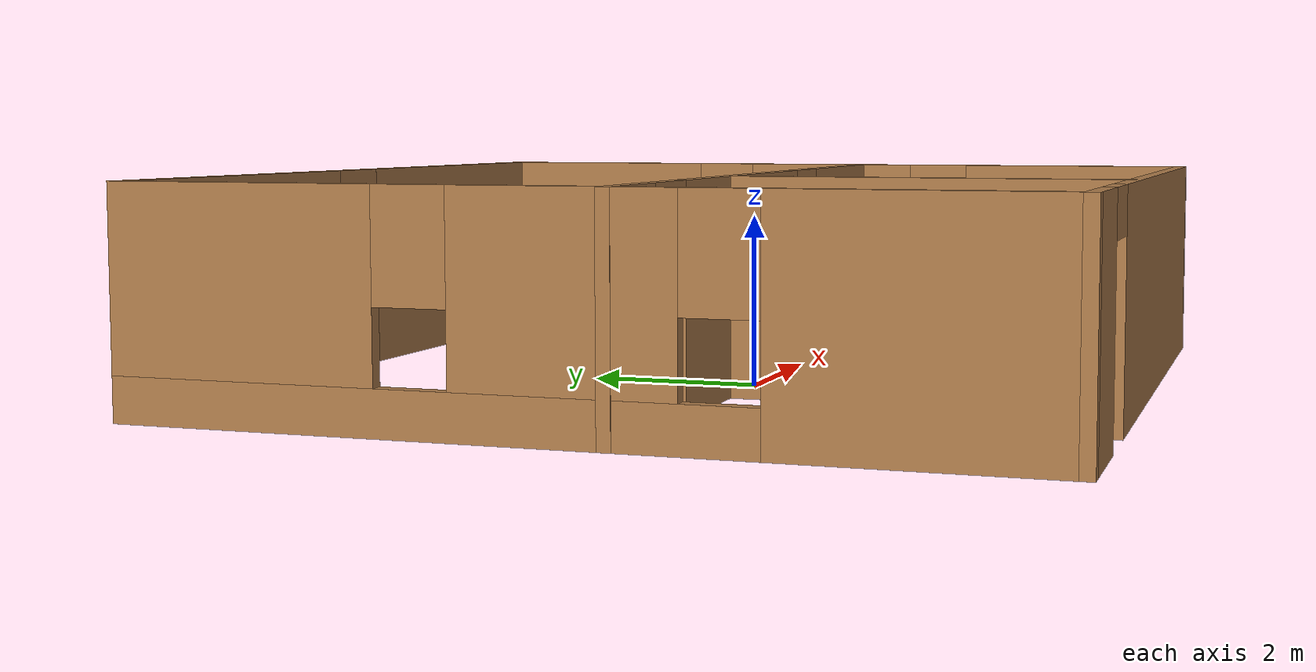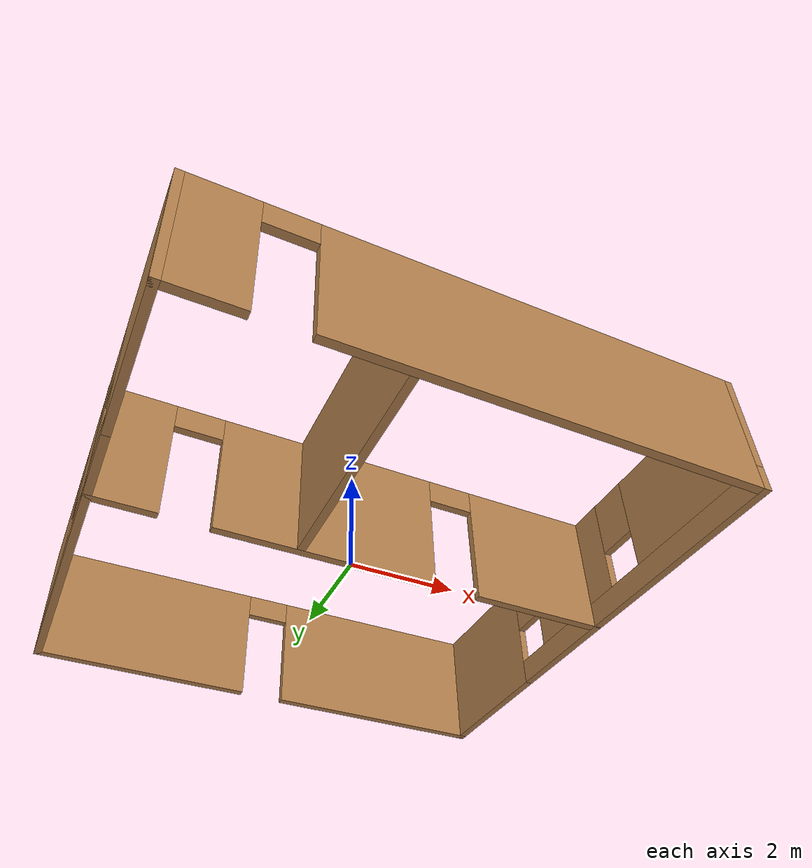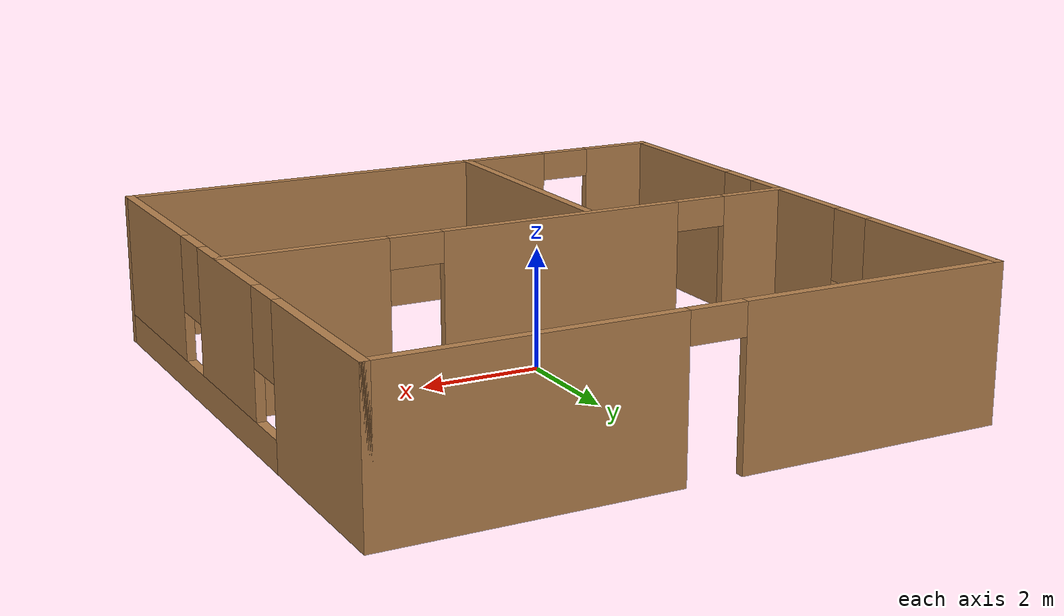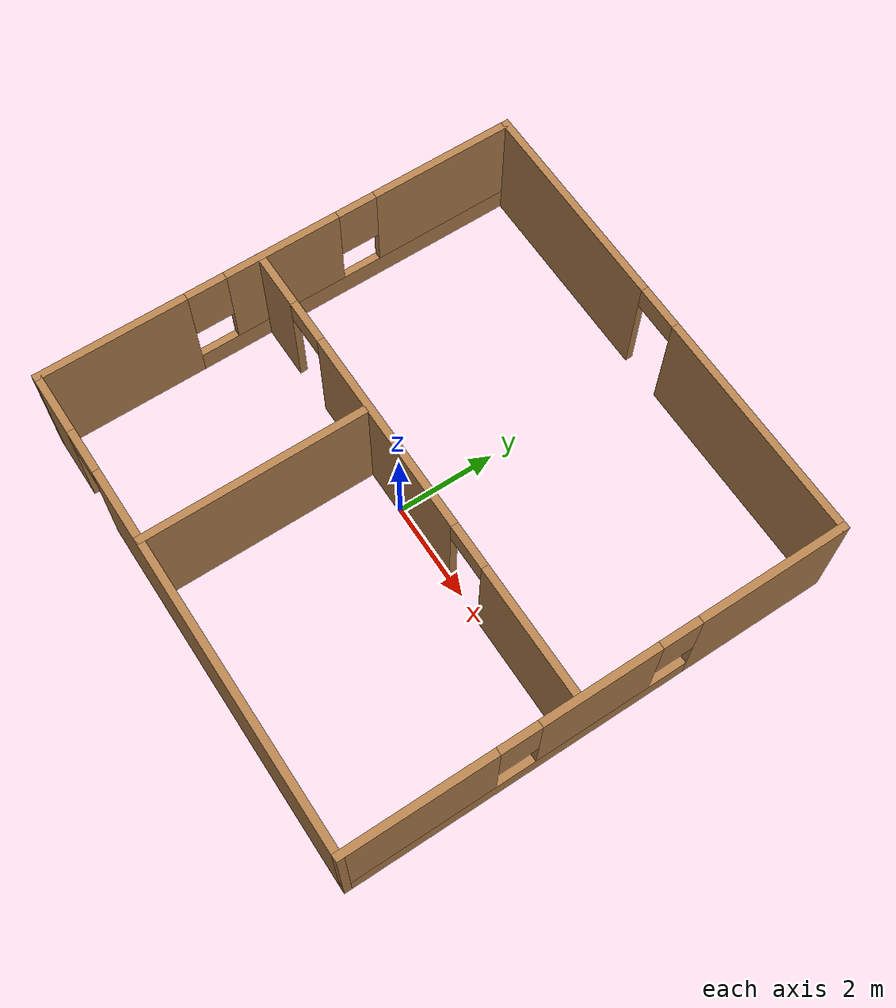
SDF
<?xml version='1.0'?>
<sdf version='1.7'>
  <model name='house_world'>
    <pose>0.302579 0.465 0 0 -0 0</pose>
    <link name='Wall_0'>
      <pose>0.002421 -4.925 0 0 -0 0</pose>
      <visual name='Wall_0_Visual_0'>
        <pose>-4.34111 0 1.25 0 -0 0</pose>
        <geometry>
          <box>
            <size>1.31779 0.15 2.5</size>
          </box>
        </geometry>
        <material>
          <script>
            <uri>file://media/materials/scripts/gazebo.material</uri>
            <name>Gazebo/Wood</name>
          </script>
          <ambient>1 1 1 1</ambient>
        </material>
        <meta>
          <layer>0</layer>
        </meta>
      </visual>
      <collision name='Wall_0_Collision_0'>
        <geometry>
          <box>
            <size>1.31779 0.15 2.5</size>
          </box>
        </geometry>
        <pose>-4.34111 0 1.25 0 -0 0</pose>
      </collision>
      <visual name='Wall_0_Visual_1'>
        <pose>1.10889 0 1.25 0 -0 0</pose>
        <geometry>
          <box>
            <size>7.78221 0.15 2.5</size>
          </box>
        </geometry>
        <material>
          <script>
            <uri>file://media/materials/scripts/gazebo.material</uri>
            <name>Gazebo/Wood</name>
          </script>
          <ambient>1 1 1 1</ambient>
        </material>
        <meta>
          <layer>0</layer>
        </meta>
      </visual>
      <collision name='Wall_0_Collision_1'>
        <geometry>
          <box>
            <size>7.78221 0.15 2.5</size>
          </box>
        </geometry>
        <pose>1.10889 0 1.25 0 -0 0</pose>
      </collision>
      <visual name='Wall_0_Visual_2'>
        <pose>-3.23221 0 2.25 0 -0 0</pose>
        <geometry>
          <box>
            <size>0.9 0.15 0.5</size>
          </box>
        </geometry>
        <material>
          <script>
            <uri>file://media/materials/scripts/gazebo.material</uri>
            <name>Gazebo/Wood</name>
          </script>
          <ambient>1 1 1 1</ambient>
        </material>
        <meta>
          <layer>0</layer>
        </meta>
      </visual>
      <collision name='Wall_0_Collision_2'>
        <geometry>
          <box>
            <size>0.9 0.15 0.5</size>
          </box>
        </geometry>
        <pose>-3.23221 0 2.25 0 -0 0</pose>
      </collision>
    </link>
    <link name='Wall_10'>
      <pose>4.92742 -0 0 0 -0 -1.5708</pose>
      <visual name='Wall_10_Visual_0'>
        <pose>-3.48144 0 1.25 0 -0 0</pose>
        <geometry>
          <box>
            <size>3.03712 0.15 2.5</size>
          </box>
        </geometry>
        <material>
          <script>
            <uri>file://media/materials/scripts/gazebo.material</uri>
            <name>Gazebo/Wood</name>
          </script>
          <ambient>1 1 1 1</ambient>
        </material>
        <meta>
          <layer>0</layer>
        </meta>
      </visual>
      <collision name='Wall_10_Collision_0'>
        <geometry>
          <box>
            <size>3.03712 0.15 2.5</size>
          </box>
        </geometry>
        <pose>-3.48144 0 1.25 0 -0 0</pose>
      </collision>
      <visual name='Wall_10_Visual_1'>
        <pose>1.51856 0 0.25 0 -0 0</pose>
        <geometry>
          <box>
            <size>6.96288 0.15 0.5</size>
          </box>
        </geometry>
        <material>
          <script>
            <uri>file://media/materials/scripts/gazebo.material</uri>
            <name>Gazebo/Wood</name>
          </script>
          <ambient>1 1 1 1</ambient>
        </material>
        <meta>
          <layer>0</layer>
        </meta>
      </visual>
      <collision name='Wall_10_Collision_1'>
        <geometry>
          <box>
            <size>6.96288 0.15 0.5</size>
          </box>
        </geometry>
        <pose>1.51856 0 0.25 0 -0 0</pose>
      </collision>
      <visual name='Wall_10_Visual_2'>
        <pose>0.013177 0 1.5 0 -0 0</pose>
        <geometry>
          <box>
            <size>2.35212 0.15 2</size>
          </box>
        </geometry>
        <material>
          <script>
            <uri>file://media/materials/scripts/gazebo.material</uri>
            <name>Gazebo/Wood</name>
          </script>
          <ambient>1 1 1 1</ambient>
        </material>
        <meta>
          <layer>0</layer>
        </meta>
      </visual>
      <collision name='Wall_10_Collision_2'>
        <geometry>
          <box>
            <size>2.35212 0.15 2</size>
          </box>
        </geometry>
        <pose>0.013177 0 1.5 0 -0 0</pose>
      </collision>
      <visual name='Wall_10_Visual_3'>
        <pose>3.49462 0 1.5 0 -0 0</pose>
        <geometry>
          <box>
            <size>3.01076 0.15 2</size>
          </box>
        </geometry>
        <material>
          <script>
            <uri>file://media/materials/scripts/gazebo.material</uri>
            <name>Gazebo/Wood</name>
          </script>
          <ambient>1 1 1 1</ambient>
        </material>
        <meta>
          <layer>0</layer>
        </meta>
      </visual>
      <collision name='Wall_10_Collision_3'>
        <geometry>
          <box>
            <size>3.01076 0.15 2</size>
          </box>
        </geometry>
        <pose>3.49462 0 1.5 0 -0 0</pose>
      </collision>
      <visual name='Wall_10_Visual_4'>
        <pose>-1.56289 0 1.9 0 -0 0</pose>
        <geometry>
          <box>
            <size>0.8 0.15 1.2</size>
          </box>
        </geometry>
        <material>
          <script>
            <uri>file://media/materials/scripts/gazebo.material</uri>
            <name>Gazebo/Wood</name>
          </script>
          <ambient>1 1 1 1</ambient>
        </material>
        <meta>
          <layer>0</layer>
        </meta>
      </visual>
      <collision name='Wall_10_Collision_4'>
        <geometry>
          <box>
            <size>0.8 0.15 1.2</size>
          </box>
        </geometry>
        <pose>-1.56289 0 1.9 0 -0 0</pose>
      </collision>
      <visual name='Wall_10_Visual_5'>
        <pose>1.58924 0 1.9 0 -0 0</pose>
        <geometry>
          <box>
            <size>0.8 0.15 1.2</size>
          </box>
        </geometry>
        <material>
          <script>
            <uri>file://media/materials/scripts/gazebo.material</uri>
            <name>Gazebo/Wood</name>
          </script>
          <ambient>1 1 1 1</ambient>
        </material>
        <meta>
          <layer>0</layer>
        </meta>
      </visual>
      <collision name='Wall_10_Collision_5'>
        <geometry>
          <box>
            <size>0.8 0.15 1.2</size>
          </box>
        </geometry>
        <pose>1.58924 0 1.9 0 -0 0</pose>
      </collision>
    </link>
    <link name='Wall_23'>
      <pose>-0.002422 -0.433788 0 0 -0 0</pose>
      <visual name='Wall_23_Visual_0'>
        <pose>-4.37988 0 1.25 0 -0 0</pose>
        <geometry>
          <box>
            <size>1.24024 0.15 2.5</size>
          </box>
        </geometry>
        <material>
          <script>
            <uri>file://media/materials/scripts/gazebo.material</uri>
            <name>Gazebo/Wood</name>
          </script>
          <ambient>1 1 1 1</ambient>
        </material>
        <meta>
          <layer>0</layer>
        </meta>
      </visual>
      <collision name='Wall_23_Collision_0'>
        <geometry>
          <box>
            <size>1.24024 0.15 2.5</size>
          </box>
        </geometry>
        <pose>-4.37988 0 1.25 0 -0 0</pose>
      </collision>
      <visual name='Wall_23_Visual_1'>
        <pose>-0.748631 0 1.25 0 -0 0</pose>
        <geometry>
          <box>
            <size>4.22226 0.15 2.5</size>
          </box>
        </geometry>
        <material>
          <script>
            <uri>file://media/materials/scripts/gazebo.material</uri>
            <name>Gazebo/Wood</name>
          </script>
          <ambient>1 1 1 1</ambient>
        </material>
        <meta>
          <layer>0</layer>
        </meta>
      </visual>
      <collision name='Wall_23_Collision_1'>
        <geometry>
          <box>
            <size>4.22226 0.15 2.5</size>
          </box>
        </geometry>
        <pose>-0.748631 0 1.25 0 -0 0</pose>
      </collision>
      <visual name='Wall_23_Visual_2'>
        <pose>3.63125 0 1.25 0 -0 0</pose>
        <geometry>
          <box>
            <size>2.7375 0.15 2.5</size>
          </box>
        </geometry>
        <material>
          <script>
            <uri>file://media/materials/scripts/gazebo.material</uri>
            <name>Gazebo/Wood</name>
          </script>
          <ambient>1 1 1 1</ambient>
        </material>
        <meta>
          <layer>0</layer>
        </meta>
      </visual>
      <collision name='Wall_23_Collision_2'>
        <geometry>
          <box>
            <size>2.7375 0.15 2.5</size>
          </box>
        </geometry>
        <pose>3.63125 0 1.25 0 -0 0</pose>
      </collision>
      <visual name='Wall_23_Visual_3'>
        <pose>-3.30976 0 2.25 0 -0 0</pose>
        <geometry>
          <box>
            <size>0.9 0.15 0.5</size>
          </box>
        </geometry>
        <material>
          <script>
            <uri>file://media/materials/scripts/gazebo.material</uri>
            <name>Gazebo/Wood</name>
          </script>
          <ambient>1 1 1 1</ambient>
        </material>
        <meta>
          <layer>0</layer>
        </meta>
      </visual>
      <collision name='Wall_23_Collision_3'>
        <geometry>
          <box>
            <size>0.9 0.15 0.5</size>
          </box>
        </geometry>
        <pose>-3.30976 0 2.25 0 -0 0</pose>
      </collision>
      <visual name='Wall_23_Visual_4'>
        <pose>1.8125 0 2.25 0 -0 0</pose>
        <geometry>
          <box>
            <size>0.9 0.15 0.5</size>
          </box>
        </geometry>
        <material>
          <script>
            <uri>file://media/materials/scripts/gazebo.material</uri>
            <name>Gazebo/Wood</name>
          </script>
          <ambient>1 1 1 1</ambient>
        </material>
        <meta>
          <layer>0</layer>
        </meta>
      </visual>
      <collision name='Wall_23_Collision_4'>
        <geometry>
          <box>
            <size>0.9 0.15 0.5</size>
          </box>
        </geometry>
        <pose>1.8125 0 2.25 0 -0 0</pose>
      </collision>
    </link>
    <link name='Wall_27'>
      <collision name='Wall_27_Collision'>
        <geometry>
          <box>
            <size>4.5 0.15 2.5</size>
          </box>
        </geometry>
        <pose>0 0 1.25 0 -0 0</pose>
      </collision>
      <visual name='Wall_27_Visual'>
        <pose>0 0 1.25 0 -0 0</pose>
        <geometry>
          <box>
            <size>4.5 0.15 2.5</size>
          </box>
        </geometry>
        <material>
          <script>
            <uri>file://media/materials/scripts/gazebo.material</uri>
            <name>Gazebo/Wood</name>
          </script>
          <ambient>1 1 1 1</ambient>
        </material>
        <meta>
          <layer>0</layer>
        </meta>
      </visual>
      <pose>-1.26723 -2.74233 0 0 -0 1.5708</pose>
    </link>
    <link name='Wall_8'>
      <pose>-4.92258 -0 0 0 -0 1.5708</pose>
      <visual name='Wall_8_Visual_0'>
        <pose>-3.48797 0 1.25 0 -0 0</pose>
        <geometry>
          <box>
            <size>3.02406 0.15 2.5</size>
          </box>
        </geometry>
        <material>
          <script>
            <uri>file://media/materials/scripts/gazebo.material</uri>
            <name>Gazebo/Wood</name>
          </script>
          <ambient>1 1 1 1</ambient>
        </material>
        <meta>
          <layer>0</layer>
        </meta>
      </visual>
      <collision name='Wall_8_Collision_0'>
        <geometry>
          <box>
            <size>3.02406 0.15 2.5</size>
          </box>
        </geometry>
        <pose>-3.48797 0 1.25 0 -0 0</pose>
      </collision>
      <visual name='Wall_8_Visual_1'>
        <pose>1.51203 0 0.25 0 -0 0</pose>
        <geometry>
          <box>
            <size>6.97594 0.15 0.5</size>
          </box>
        </geometry>
        <material>
          <script>
            <uri>file://media/materials/scripts/gazebo.material</uri>
            <name>Gazebo/Wood</name>
          </script>
          <ambient>1 1 1 1</ambient>
        </material>
        <meta>
          <layer>0</layer>
        </meta>
      </visual>
      <collision name='Wall_8_Collision_1'>
        <geometry>
          <box>
            <size>6.97594 0.15 0.5</size>
          </box>
        </geometry>
        <pose>1.51203 0 0.25 0 -0 0</pose>
      </collision>
      <visual name='Wall_8_Visual_2'>
        <pose>0.006773 0 1.5 0 -0 0</pose>
        <geometry>
          <box>
            <size>2.36542 0.15 2</size>
          </box>
        </geometry>
        <material>
          <script>
            <uri>file://media/materials/scripts/gazebo.material</uri>
            <name>Gazebo/Wood</name>
          </script>
          <ambient>1 1 1 1</ambient>
        </material>
        <meta>
          <layer>0</layer>
        </meta>
      </visual>
      <collision name='Wall_8_Collision_2'>
        <geometry>
          <box>
            <size>2.36542 0.15 2</size>
          </box>
        </geometry>
        <pose>0.006773 0 1.5 0 -0 0</pose>
      </collision>
      <visual name='Wall_8_Visual_3'>
        <pose>3.49474 0 1.5 0 -0 0</pose>
        <geometry>
          <box>
            <size>3.01051 0.15 2</size>
          </box>
        </geometry>
        <material>
          <script>
            <uri>file://media/materials/scripts/gazebo.material</uri>
            <name>Gazebo/Wood</name>
          </script>
          <ambient>1 1 1 1</ambient>
        </material>
        <meta>
          <layer>0</layer>
        </meta>
      </visual>
      <collision name='Wall_8_Collision_3'>
        <geometry>
          <box>
            <size>3.01051 0.15 2</size>
          </box>
        </geometry>
        <pose>3.49474 0 1.5 0 -0 0</pose>
      </collision>
      <visual name='Wall_8_Visual_4'>
        <pose>-1.57594 0 1.9 0 -0 0</pose>
        <geometry>
          <box>
            <size>0.8 0.15 1.2</size>
          </box>
        </geometry>
        <material>
          <script>
            <uri>file://media/materials/scripts/gazebo.material</uri>
            <name>Gazebo/Wood</name>
          </script>
          <ambient>1 1 1 1</ambient>
        </material>
        <meta>
          <layer>0</layer>
        </meta>
      </visual>
      <collision name='Wall_8_Collision_4'>
        <geometry>
          <box>
            <size>0.8 0.15 1.2</size>
          </box>
        </geometry>
        <pose>-1.57594 0 1.9 0 -0 0</pose>
      </collision>
      <visual name='Wall_8_Visual_5'>
        <pose>1.58949 0 1.9 0 -0 0</pose>
        <geometry>
          <box>
            <size>0.8 0.15 1.2</size>
          </box>
        </geometry>
        <material>
          <script>
            <uri>file://media/materials/scripts/gazebo.material</uri>
            <name>Gazebo/Wood</name>
          </script>
          <ambient>1 1 1 1</ambient>
        </material>
        <meta>
          <layer>0</layer>
        </meta>
      </visual>
      <collision name='Wall_8_Collision_5'>
        <geometry>
          <box>
            <size>0.8 0.15 1.2</size>
          </box>
        </geometry>
        <pose>1.58949 0 1.9 0 -0 0</pose>
      </collision>
    </link>
    <link name='Wall_9'>
      <pose>0.002421 4.925 0 0 -0 0</pose>
      <visual name='Wall_9_Visual_0'>
        <pose>-2.79164 0 1.25 0 -0 0</pose>
        <geometry>
          <box>
            <size>4.41671 0.15 2.5</size>
          </box>
        </geometry>
        <material>
          <script>
            <uri>file://media/materials/scripts/gazebo.material</uri>
            <name>Gazebo/Wood</name>
          </script>
          <ambient>1 1 1 1</ambient>
        </material>
        <meta>
          <layer>0</layer>
        </meta>
      </visual>
      <collision name='Wall_9_Collision_0'>
        <geometry>
          <box>
            <size>4.41671 0.15 2.5</size>
          </box>
        </geometry>
        <pose>-2.79164 0 1.25 0 -0 0</pose>
      </collision>
      <visual name='Wall_9_Visual_1'>
        <pose>2.65835 0 1.25 0 -0 0</pose>
        <geometry>
          <box>
            <size>4.68329 0.15 2.5</size>
          </box>
        </geometry>
        <material>
          <script>
            <uri>file://media/materials/scripts/gazebo.material</uri>
            <name>Gazebo/Wood</name>
          </script>
          <ambient>1 1 1 1</ambient>
        </material>
        <meta>
          <layer>0</layer>
        </meta>
      </visual>
      <collision name='Wall_9_Collision_1'>
        <geometry>
          <box>
            <size>4.68329 0.15 2.5</size>
          </box>
        </geometry>
        <pose>2.65835 0 1.25 0 -0 0</pose>
      </collision>
      <visual name='Wall_9_Visual_2'>
        <pose>-0.133291 0 2.25 0 -0 0</pose>
        <geometry>
          <box>
            <size>0.9 0.15 0.5</size>
          </box>
        </geometry>
        <material>
          <script>
            <uri>file://media/materials/scripts/gazebo.material</uri>
            <name>Gazebo/Wood</name>
          </script>
          <ambient>1 1 1 1</ambient>
        </material>
        <meta>
          <layer>0</layer>
        </meta>
      </visual>
      <collision name='Wall_9_Collision_2'>
        <geometry>
          <box>
            <size>0.9 0.15 0.5</size>
          </box>
        </geometry>
        <pose>-0.133291 0 2.25 0 -0 0</pose>
      </collision>
    </link>
    <static>1</static>
  </model>
</sdf>
